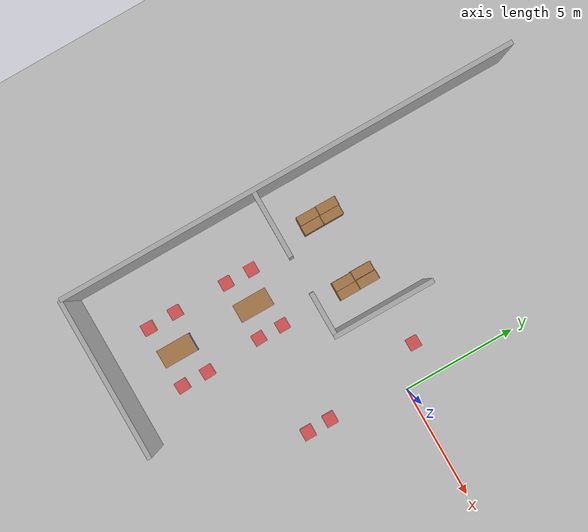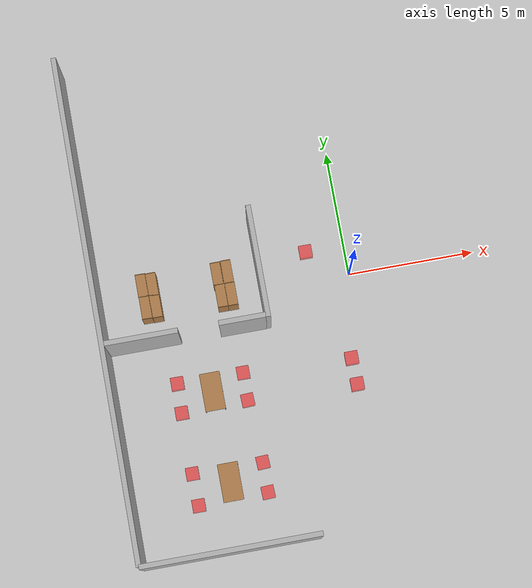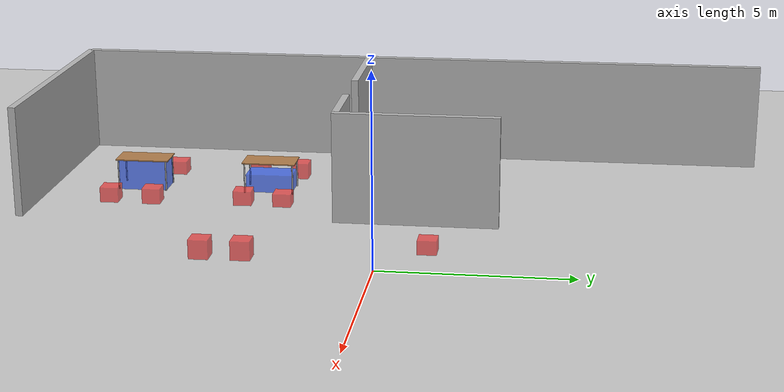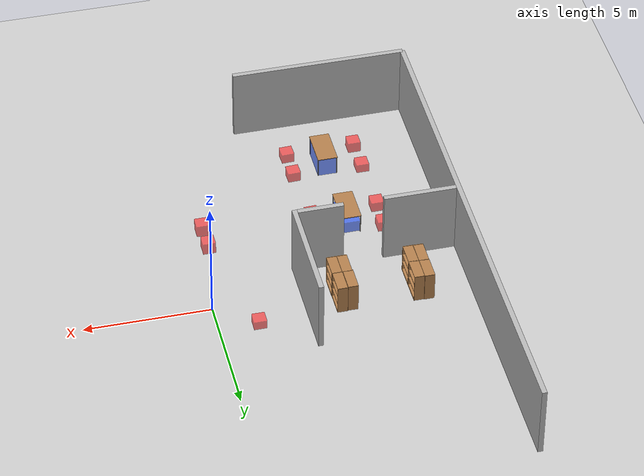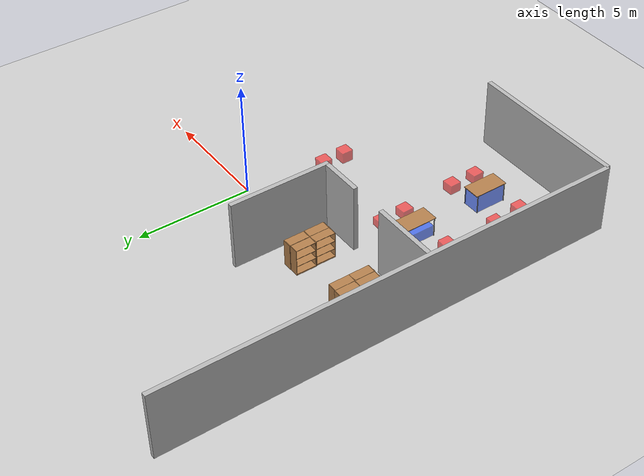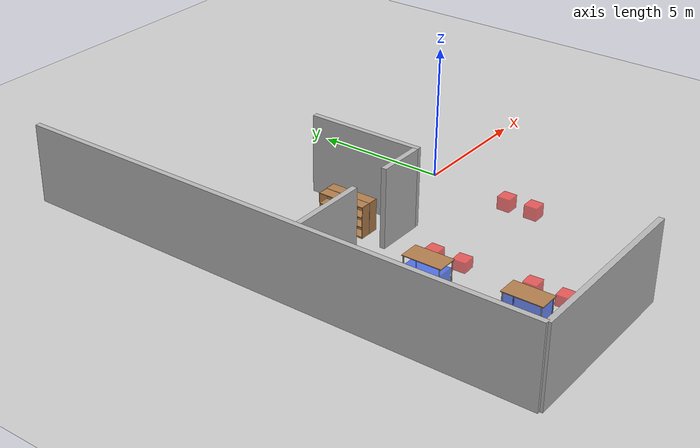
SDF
<sdf version="1.7">
 <world name="library_world">
  <model name="ground_plane">
   <static>1</static>
   <link name="link">
    <collision name="collision">
     <geometry><plane><normal>0 0 1</normal><size>100 100</size></plane></geometry>
     <surface>
      <contact><collide_bitmask>65535</collide_bitmask></contact>
      <friction><ode><mu>100</mu><mu2>50</mu2></ode></friction>
     </surface>
    </collision>
    <visual name="visual">
     <cast_shadows>0</cast_shadows>
     <geometry><plane><normal>0 0 1</normal><size>100 100</size></plane></geometry>
     <material>
      <script><uri>file://media/materials/scripts/gazebo.material</uri><name>Gazebo/Grey</name></script>
     </material>
    </visual>
   </link>
  </model>
  <model name="wall_left">
   <static>1</static>
   <link name="link"><visual name="visual"><geometry><box><size>0.2 20 3</size></box></geometry></visual></link>
   <pose>-10 0 1.5 0 -0 0</pose>
  </model>
  <model name="wall_front_left">
   <static>1</static>
   <link name="link"><visual name="visual"><geometry><box><size>7 0.2 3</size></box></geometry></visual></link>
   <pose>-6.5 -10 1.5 0 -0 0</pose>
  </model>
  <model name="bookshelf_0_clone_2_clone_21">
   <static>1</static>
   <link name="link">
    <inertial><mass>1</mass></inertial>
    <collision name="back">
     <pose>0 0.005 0.6 0 -0 0</pose>
     <geometry><box><size>0.9 0.01 1.2</size></box></geometry>
    </collision>
    <visual name="visual1">
     <pose>0 0.005 0.6 0 -0 0</pose>
     <geometry><box><size>0.9 0.01 1.2</size></box></geometry>
     <material>
      <script><uri>file://media/materials/scripts/gazebo.material</uri><name>Gazebo/Wood</name></script>
     </material>
    </visual>
    <collision name="left_side">
     <pose>0.45 -0.195 0.6 0 -0 0</pose>
     <geometry><box><size>0.02 0.4 1.2</size></box></geometry>
    </collision>
    <visual name="visual2">
     <pose>0.45 -0.195 0.6 0 -0 0</pose>
     <geometry><box><size>0.02 0.4 1.2</size></box></geometry>
     <material>
      <script><uri>file://media/materials/scripts/gazebo.material</uri><name>Gazebo/Wood</name></script>
     </material>
    </visual>
    <collision name="right_side">
     <pose>-0.45 -0.195 0.6 0 -0 0</pose>
     <geometry><box><size>0.02 0.4 1.2</size></box></geometry>
    </collision>
    <visual name="visual3">
     <pose>-0.45 -0.195 0.6 0 -0 0</pose>
     <geometry><box><size>0.02 0.4 1.2</size></box></geometry>
     <material>
      <script><uri>file://media/materials/scripts/gazebo.material</uri><name>Gazebo/Wood</name></script>
     </material>
    </visual>
    <collision name="bottom">
     <pose>0 -0.195 0.03 0 -0 0</pose>
     <geometry><box><size>0.88 0.4 0.06</size></box></geometry>
    </collision>
    <visual name="visual4">
     <pose>0 -0.195 0.03 0 -0 0</pose>
     <geometry><box><size>0.88 0.4 0.06</size></box></geometry>
     <material>
      <script><uri>file://media/materials/scripts/gazebo.material</uri><name>Gazebo/Wood</name></script>
     </material>
    </visual>
    <collision name="top">
     <pose>0 -0.195 1.19 0 -0 0</pose>
     <geometry><box><size>0.88 0.4 0.02</size></box></geometry>
    </collision>
    <visual name="visual5">
     <pose>0 -0.195 1.19 0 -0 0</pose>
     <geometry><box><size>0.88 0.4 0.02</size></box></geometry>
     <material>
      <script><uri>file://media/materials/scripts/gazebo.material</uri><name>Gazebo/Wood</name></script>
     </material>
    </visual>
    <collision name="low_shelf">
     <pose>0 -0.195 0.43 0 -0 0</pose>
     <geometry><box><size>0.88 0.4 0.02</size></box></geometry>
    </collision>
    <visual name="visual6">
     <pose>0 -0.195 0.43 0 -0 0</pose>
     <geometry><box><size>0.88 0.4 0.02</size></box></geometry>
     <material>
      <script><uri>file://media/materials/scripts/gazebo.material</uri><name>Gazebo/Wood</name></script>
     </material>
    </visual>
    <collision name="high_shelf">
     <pose>0 -0.195 0.8 0 -0 0</pose>
     <geometry><box><size>0.88 0.4 0.02</size></box></geometry>
    </collision>
    <visual name="visual7">
     <pose>0 -0.195 0.8 0 -0 0</pose>
     <geometry><box><size>0.88 0.4 0.02</size></box></geometry>
     <material>
      <script><uri>file://media/materials/scripts/gazebo.material</uri><name>Gazebo/Wood</name></script>
     </material>
    </visual>
   </link>
   <pose>-7.97891 0.803139 0 0 -0 1.57381</pose>
  </model>
  <model name="bookshelf_0_clone_2_clone_22">
   <static>1</static>
   <link name="link">
    <inertial><mass>1</mass></inertial>
    <collision name="back">
     <pose>0 0.005 0.6 0 -0 0</pose>
     <geometry><box><size>0.9 0.01 1.2</size></box></geometry>
    </collision>
    <visual name="visual1">
     <pose>0 0.005 0.6 0 -0 0</pose>
     <geometry><box><size>0.9 0.01 1.2</size></box></geometry>
     <material>
      <script><uri>file://media/materials/scripts/gazebo.material</uri><name>Gazebo/Wood</name></script>
     </material>
    </visual>
    <collision name="left_side">
     <pose>0.45 -0.195 0.6 0 -0 0</pose>
     <geometry><box><size>0.02 0.4 1.2</size></box></geometry>
    </collision>
    <visual name="visual2">
     <pose>0.45 -0.195 0.6 0 -0 0</pose>
     <geometry><box><size>0.02 0.4 1.2</size></box></geometry>
     <material>
      <script><uri>file://media/materials/scripts/gazebo.material</uri><name>Gazebo/Wood</name></script>
     </material>
    </visual>
    <collision name="right_side">
     <pose>-0.45 -0.195 0.6 0 -0 0</pose>
     <geometry><box><size>0.02 0.4 1.2</size></box></geometry>
    </collision>
    <visual name="visual3">
     <pose>-0.45 -0.195 0.6 0 -0 0</pose>
     <geometry><box><size>0.02 0.4 1.2</size></box></geometry>
     <material>
      <script><uri>file://media/materials/scripts/gazebo.material</uri><name>Gazebo/Wood</name></script>
     </material>
    </visual>
    <collision name="bottom">
     <pose>0 -0.195 0.03 0 -0 0</pose>
     <geometry><box><size>0.88 0.4 0.06</size></box></geometry>
    </collision>
    <visual name="visual4">
     <pose>0 -0.195 0.03 0 -0 0</pose>
     <geometry><box><size>0.88 0.4 0.06</size></box></geometry>
     <material>
      <script><uri>file://media/materials/scripts/gazebo.material</uri><name>Gazebo/Wood</name></script>
     </material>
    </visual>
    <collision name="top">
     <pose>0 -0.195 1.19 0 -0 0</pose>
     <geometry><box><size>0.88 0.4 0.02</size></box></geometry>
    </collision>
    <visual name="visual5">
     <pose>0 -0.195 1.19 0 -0 0</pose>
     <geometry><box><size>0.88 0.4 0.02</size></box></geometry>
     <material>
      <script><uri>file://media/materials/scripts/gazebo.material</uri><name>Gazebo/Wood</name></script>
     </material>
    </visual>
    <collision name="low_shelf">
     <pose>0 -0.195 0.43 0 -0 0</pose>
     <geometry><box><size>0.88 0.4 0.02</size></box></geometry>
    </collision>
    <visual name="visual6">
     <pose>0 -0.195 0.43 0 -0 0</pose>
     <geometry><box><size>0.88 0.4 0.02</size></box></geometry>
     <material>
      <script><uri>file://media/materials/scripts/gazebo.material</uri><name>Gazebo/Wood</name></script>
     </material>
    </visual>
    <collision name="high_shelf">
     <pose>0 -0.195 0.8 0 -0 0</pose>
     <geometry><box><size>0.88 0.4 0.02</size></box></geometry>
    </collision>
    <visual name="visual7">
     <pose>0 -0.195 0.8 0 -0 0</pose>
     <geometry><box><size>0.88 0.4 0.02</size></box></geometry>
     <material>
      <script><uri>file://media/materials/scripts/gazebo.material</uri><name>Gazebo/Wood</name></script>
     </material>
    </visual>
   </link>
   <pose>-7.97514 -0.07728 0 0 -0 1.57381</pose>
  </model>
  <model name="bookshelf_0_clone_2_clone_26">
   <static>1</static>
   <link name="link">
    <inertial><mass>1</mass></inertial>
    <collision name="back">
     <pose>0 0.005 0.6 0 -0 0</pose>
     <geometry><box><size>0.9 0.01 1.2</size></box></geometry>
    </collision>
    <visual name="visual1">
     <pose>0 0.005 0.6 0 -0 0</pose>
     <geometry><box><size>0.9 0.01 1.2</size></box></geometry>
     <material>
      <script><uri>file://media/materials/scripts/gazebo.material</uri><name>Gazebo/Wood</name></script>
     </material>
    </visual>
    <collision name="left_side">
     <pose>0.45 -0.195 0.6 0 -0 0</pose>
     <geometry><box><size>0.02 0.4 1.2</size></box></geometry>
    </collision>
    <visual name="visual2">
     <pose>0.45 -0.195 0.6 0 -0 0</pose>
     <geometry><box><size>0.02 0.4 1.2</size></box></geometry>
     <material>
      <script><uri>file://media/materials/scripts/gazebo.material</uri><name>Gazebo/Wood</name></script>
     </material>
    </visual>
    <collision name="right_side">
     <pose>-0.45 -0.195 0.6 0 -0 0</pose>
     <geometry><box><size>0.02 0.4 1.2</size></box></geometry>
    </collision>
    <visual name="visual3">
     <pose>-0.45 -0.195 0.6 0 -0 0</pose>
     <geometry><box><size>0.02 0.4 1.2</size></box></geometry>
     <material>
      <script><uri>file://media/materials/scripts/gazebo.material</uri><name>Gazebo/Wood</name></script>
     </material>
    </visual>
    <collision name="bottom">
     <pose>0 -0.195 0.03 0 -0 0</pose>
     <geometry><box><size>0.88 0.4 0.06</size></box></geometry>
    </collision>
    <visual name="visual4">
     <pose>0 -0.195 0.03 0 -0 0</pose>
     <geometry><box><size>0.88 0.4 0.06</size></box></geometry>
     <material>
      <script><uri>file://media/materials/scripts/gazebo.material</uri><name>Gazebo/Wood</name></script>
     </material>
    </visual>
    <collision name="top">
     <pose>0 -0.195 1.19 0 -0 0</pose>
     <geometry><box><size>0.88 0.4 0.02</size></box></geometry>
    </collision>
    <visual name="visual5">
     <pose>0 -0.195 1.19 0 -0 0</pose>
     <geometry><box><size>0.88 0.4 0.02</size></box></geometry>
     <material>
      <script><uri>file://media/materials/scripts/gazebo.material</uri><name>Gazebo/Wood</name></script>
     </material>
    </visual>
    <collision name="low_shelf">
     <pose>0 -0.195 0.43 0 -0 0</pose>
     <geometry><box><size>0.88 0.4 0.02</size></box></geometry>
    </collision>
    <visual name="visual6">
     <pose>0 -0.195 0.43 0 -0 0</pose>
     <geometry><box><size>0.88 0.4 0.02</size></box></geometry>
     <material>
      <script><uri>file://media/materials/scripts/gazebo.material</uri><name>Gazebo/Wood</name></script>
     </material>
    </visual>
    <collision name="high_shelf">
     <pose>0 -0.195 0.8 0 -0 0</pose>
     <geometry><box><size>0.88 0.4 0.02</size></box></geometry>
    </collision>
    <visual name="visual7">
     <pose>0 -0.195 0.8 0 -0 0</pose>
     <geometry><box><size>0.88 0.4 0.02</size></box></geometry>
     <material>
      <script><uri>file://media/materials/scripts/gazebo.material</uri><name>Gazebo/Wood</name></script>
     </material>
    </visual>
   </link>
   <pose>-4.98785 0.777625 0 0 -0 1.57381</pose>
  </model>
  <model name="bookshelf_0_clone_2_clone_27">
   <static>1</static>
   <link name="link">
    <inertial><mass>1</mass></inertial>
    <collision name="back">
     <pose>0 0.005 0.6 0 -0 0</pose>
     <geometry><box><size>0.9 0.01 1.2</size></box></geometry>
    </collision>
    <visual name="visual1">
     <pose>0 0.005 0.6 0 -0 0</pose>
     <geometry><box><size>0.9 0.01 1.2</size></box></geometry>
     <material>
      <script><uri>file://media/materials/scripts/gazebo.material</uri><name>Gazebo/Wood</name></script>
     </material>
    </visual>
    <collision name="left_side">
     <pose>0.45 -0.195 0.6 0 -0 0</pose>
     <geometry><box><size>0.02 0.4 1.2</size></box></geometry>
    </collision>
    <visual name="visual2">
     <pose>0.45 -0.195 0.6 0 -0 0</pose>
     <geometry><box><size>0.02 0.4 1.2</size></box></geometry>
     <material>
      <script><uri>file://media/materials/scripts/gazebo.material</uri><name>Gazebo/Wood</name></script>
     </material>
    </visual>
    <collision name="right_side">
     <pose>-0.45 -0.195 0.6 0 -0 0</pose>
     <geometry><box><size>0.02 0.4 1.2</size></box></geometry>
    </collision>
    <visual name="visual3">
     <pose>-0.45 -0.195 0.6 0 -0 0</pose>
     <geometry><box><size>0.02 0.4 1.2</size></box></geometry>
     <material>
      <script><uri>file://media/materials/scripts/gazebo.material</uri><name>Gazebo/Wood</name></script>
     </material>
    </visual>
    <collision name="bottom">
     <pose>0 -0.195 0.03 0 -0 0</pose>
     <geometry><box><size>0.88 0.4 0.06</size></box></geometry>
    </collision>
    <visual name="visual4">
     <pose>0 -0.195 0.03 0 -0 0</pose>
     <geometry><box><size>0.88 0.4 0.06</size></box></geometry>
     <material>
      <script><uri>file://media/materials/scripts/gazebo.material</uri><name>Gazebo/Wood</name></script>
     </material>
    </visual>
    <collision name="top">
     <pose>0 -0.195 1.19 0 -0 0</pose>
     <geometry><box><size>0.88 0.4 0.02</size></box></geometry>
    </collision>
    <visual name="visual5">
     <pose>0 -0.195 1.19 0 -0 0</pose>
     <geometry><box><size>0.88 0.4 0.02</size></box></geometry>
     <material>
      <script><uri>file://media/materials/scripts/gazebo.material</uri><name>Gazebo/Wood</name></script>
     </material>
    </visual>
    <collision name="low_shelf">
     <pose>0 -0.195 0.43 0 -0 0</pose>
     <geometry><box><size>0.88 0.4 0.02</size></box></geometry>
    </collision>
    <visual name="visual6">
     <pose>0 -0.195 0.43 0 -0 0</pose>
     <geometry><box><size>0.88 0.4 0.02</size></box></geometry>
     <material>
      <script><uri>file://media/materials/scripts/gazebo.material</uri><name>Gazebo/Wood</name></script>
     </material>
    </visual>
    <collision name="high_shelf">
     <pose>0 -0.195 0.8 0 -0 0</pose>
     <geometry><box><size>0.88 0.4 0.02</size></box></geometry>
    </collision>
    <visual name="visual7">
     <pose>0 -0.195 0.8 0 -0 0</pose>
     <geometry><box><size>0.88 0.4 0.02</size></box></geometry>
     <material>
      <script><uri>file://media/materials/scripts/gazebo.material</uri><name>Gazebo/Wood</name></script>
     </material>
    </visual>
   </link>
   <pose>-4.97715 -0.128722 0 0 -0 1.57381</pose>
  </model>
  <model name="bookshelf_0_clone_8_clone_17_clone_12">
   <static>1</static>
   <link name="link">
    <inertial><mass>1</mass></inertial>
    <collision name="back">
     <pose>0 0.005 0.6 0 -0 0</pose>
     <geometry><box><size>0.9 0.01 1.2</size></box></geometry>
    </collision>
    <visual name="visual1">
     <pose>0 0.005 0.6 0 -0 0</pose>
     <geometry><box><size>0.9 0.01 1.2</size></box></geometry>
     <material>
      <script><uri>file://media/materials/scripts/gazebo.material</uri><name>Gazebo/Wood</name></script>
     </material>
    </visual>
    <collision name="left_side">
     <pose>0.45 -0.195 0.6 0 -0 0</pose>
     <geometry><box><size>0.02 0.4 1.2</size></box></geometry>
    </collision>
    <visual name="visual2">
     <pose>0.45 -0.195 0.6 0 -0 0</pose>
     <geometry><box><size>0.02 0.4 1.2</size></box></geometry>
     <material>
      <script><uri>file://media/materials/scripts/gazebo.material</uri><name>Gazebo/Wood</name></script>
     </material>
    </visual>
    <collision name="right_side">
     <pose>-0.45 -0.195 0.6 0 -0 0</pose>
     <geometry><box><size>0.02 0.4 1.2</size></box></geometry>
    </collision>
    <visual name="visual3">
     <pose>-0.45 -0.195 0.6 0 -0 0</pose>
     <geometry><box><size>0.02 0.4 1.2</size></box></geometry>
     <material>
      <script><uri>file://media/materials/scripts/gazebo.material</uri><name>Gazebo/Wood</name></script>
     </material>
    </visual>
    <collision name="bottom">
     <pose>0 -0.195 0.03 0 -0 0</pose>
     <geometry><box><size>0.88 0.4 0.06</size></box></geometry>
    </collision>
    <visual name="visual4">
     <pose>0 -0.195 0.03 0 -0 0</pose>
     <geometry><box><size>0.88 0.4 0.06</size></box></geometry>
     <material>
      <script><uri>file://media/materials/scripts/gazebo.material</uri><name>Gazebo/Wood</name></script>
     </material>
    </visual>
    <collision name="top">
     <pose>0 -0.195 1.19 0 -0 0</pose>
     <geometry><box><size>0.88 0.4 0.02</size></box></geometry>
    </collision>
    <visual name="visual5">
     <pose>0 -0.195 1.19 0 -0 0</pose>
     <geometry><box><size>0.88 0.4 0.02</size></box></geometry>
     <material>
      <script><uri>file://media/materials/scripts/gazebo.material</uri><name>Gazebo/Wood</name></script>
     </material>
    </visual>
    <collision name="low_shelf">
     <pose>0 -0.195 0.43 0 -0 0</pose>
     <geometry><box><size>0.88 0.4 0.02</size></box></geometry>
    </collision>
    <visual name="visual6">
     <pose>0 -0.195 0.43 0 -0 0</pose>
     <geometry><box><size>0.88 0.4 0.02</size></box></geometry>
     <material>
      <script><uri>file://media/materials/scripts/gazebo.material</uri><name>Gazebo/Wood</name></script>
     </material>
    </visual>
    <collision name="high_shelf">
     <pose>0 -0.195 0.8 0 -0 0</pose>
     <geometry><box><size>0.88 0.4 0.02</size></box></geometry>
    </collision>
    <visual name="visual7">
     <pose>0 -0.195 0.8 0 -0 0</pose>
     <geometry><box><size>0.88 0.4 0.02</size></box></geometry>
     <material>
      <script><uri>file://media/materials/scripts/gazebo.material</uri><name>Gazebo/Wood</name></script>
     </material>
    </visual>
   </link>
   <pose>-5.01471 0.760959 0 0 0 -1.57537</pose>
  </model>
  <model name="bookshelf_0_clone_8_clone_17_clone_13">
   <static>1</static>
   <link name="link">
    <inertial><mass>1</mass></inertial>
    <collision name="back">
     <pose>0 0.005 0.6 0 -0 0</pose>
     <geometry><box><size>0.9 0.01 1.2</size></box></geometry>
    </collision>
    <visual name="visual1">
     <pose>0 0.005 0.6 0 -0 0</pose>
     <geometry><box><size>0.9 0.01 1.2</size></box></geometry>
     <material>
      <script><uri>file://media/materials/scripts/gazebo.material</uri><name>Gazebo/Wood</name></script>
     </material>
    </visual>
    <collision name="left_side">
     <pose>0.45 -0.195 0.6 0 -0 0</pose>
     <geometry><box><size>0.02 0.4 1.2</size></box></geometry>
    </collision>
    <visual name="visual2">
     <pose>0.45 -0.195 0.6 0 -0 0</pose>
     <geometry><box><size>0.02 0.4 1.2</size></box></geometry>
     <material>
      <script><uri>file://media/materials/scripts/gazebo.material</uri><name>Gazebo/Wood</name></script>
     </material>
    </visual>
    <collision name="right_side">
     <pose>-0.45 -0.195 0.6 0 -0 0</pose>
     <geometry><box><size>0.02 0.4 1.2</size></box></geometry>
    </collision>
    <visual name="visual3">
     <pose>-0.45 -0.195 0.6 0 -0 0</pose>
     <geometry><box><size>0.02 0.4 1.2</size></box></geometry>
     <material>
      <script><uri>file://media/materials/scripts/gazebo.material</uri><name>Gazebo/Wood</name></script>
     </material>
    </visual>
    <collision name="bottom">
     <pose>0 -0.195 0.03 0 -0 0</pose>
     <geometry><box><size>0.88 0.4 0.06</size></box></geometry>
    </collision>
    <visual name="visual4">
     <pose>0 -0.195 0.03 0 -0 0</pose>
     <geometry><box><size>0.88 0.4 0.06</size></box></geometry>
     <material>
      <script><uri>file://media/materials/scripts/gazebo.material</uri><name>Gazebo/Wood</name></script>
     </material>
    </visual>
    <collision name="top">
     <pose>0 -0.195 1.19 0 -0 0</pose>
     <geometry><box><size>0.88 0.4 0.02</size></box></geometry>
    </collision>
    <visual name="visual5">
     <pose>0 -0.195 1.19 0 -0 0</pose>
     <geometry><box><size>0.88 0.4 0.02</size></box></geometry>
     <material>
      <script><uri>file://media/materials/scripts/gazebo.material</uri><name>Gazebo/Wood</name></script>
     </material>
    </visual>
    <collision name="low_shelf">
     <pose>0 -0.195 0.43 0 -0 0</pose>
     <geometry><box><size>0.88 0.4 0.02</size></box></geometry>
    </collision>
    <visual name="visual6">
     <pose>0 -0.195 0.43 0 -0 0</pose>
     <geometry><box><size>0.88 0.4 0.02</size></box></geometry>
     <material>
      <script><uri>file://media/materials/scripts/gazebo.material</uri><name>Gazebo/Wood</name></script>
     </material>
    </visual>
    <collision name="high_shelf">
     <pose>0 -0.195 0.8 0 -0 0</pose>
     <geometry><box><size>0.88 0.4 0.02</size></box></geometry>
    </collision>
    <visual name="visual7">
     <pose>0 -0.195 0.8 0 -0 0</pose>
     <geometry><box><size>0.88 0.4 0.02</size></box></geometry>
     <material>
      <script><uri>file://media/materials/scripts/gazebo.material</uri><name>Gazebo/Wood</name></script>
     </material>
    </visual>
   </link>
   <pose>-4.98731 -0.125446 0 0 0 -1.57537</pose>
  </model>
  <model name="bookshelf_0_clone_8_clone_17_clone_17">
   <static>1</static>
   <link name="link">
    <inertial><mass>1</mass></inertial>
    <collision name="back">
     <pose>0 0.005 0.6 0 -0 0</pose>
     <geometry><box><size>0.9 0.01 1.2</size></box></geometry>
    </collision>
    <visual name="visual1">
     <pose>0 0.005 0.6 0 -0 0</pose>
     <geometry><box><size>0.9 0.01 1.2</size></box></geometry>
     <material>
      <script><uri>file://media/materials/scripts/gazebo.material</uri><name>Gazebo/Wood</name></script>
     </material>
    </visual>
    <collision name="left_side">
     <pose>0.45 -0.195 0.6 0 -0 0</pose>
     <geometry><box><size>0.02 0.4 1.2</size></box></geometry>
    </collision>
    <visual name="visual2">
     <pose>0.45 -0.195 0.6 0 -0 0</pose>
     <geometry><box><size>0.02 0.4 1.2</size></box></geometry>
     <material>
      <script><uri>file://media/materials/scripts/gazebo.material</uri><name>Gazebo/Wood</name></script>
     </material>
    </visual>
    <collision name="right_side">
     <pose>-0.45 -0.195 0.6 0 -0 0</pose>
     <geometry><box><size>0.02 0.4 1.2</size></box></geometry>
    </collision>
    <visual name="visual3">
     <pose>-0.45 -0.195 0.6 0 -0 0</pose>
     <geometry><box><size>0.02 0.4 1.2</size></box></geometry>
     <material>
      <script><uri>file://media/materials/scripts/gazebo.material</uri><name>Gazebo/Wood</name></script>
     </material>
    </visual>
    <collision name="bottom">
     <pose>0 -0.195 0.03 0 -0 0</pose>
     <geometry><box><size>0.88 0.4 0.06</size></box></geometry>
    </collision>
    <visual name="visual4">
     <pose>0 -0.195 0.03 0 -0 0</pose>
     <geometry><box><size>0.88 0.4 0.06</size></box></geometry>
     <material>
      <script><uri>file://media/materials/scripts/gazebo.material</uri><name>Gazebo/Wood</name></script>
     </material>
    </visual>
    <collision name="top">
     <pose>0 -0.195 1.19 0 -0 0</pose>
     <geometry><box><size>0.88 0.4 0.02</size></box></geometry>
    </collision>
    <visual name="visual5">
     <pose>0 -0.195 1.19 0 -0 0</pose>
     <geometry><box><size>0.88 0.4 0.02</size></box></geometry>
     <material>
      <script><uri>file://media/materials/scripts/gazebo.material</uri><name>Gazebo/Wood</name></script>
     </material>
    </visual>
    <collision name="low_shelf">
     <pose>0 -0.195 0.43 0 -0 0</pose>
     <geometry><box><size>0.88 0.4 0.02</size></box></geometry>
    </collision>
    <visual name="visual6">
     <pose>0 -0.195 0.43 0 -0 0</pose>
     <geometry><box><size>0.88 0.4 0.02</size></box></geometry>
     <material>
      <script><uri>file://media/materials/scripts/gazebo.material</uri><name>Gazebo/Wood</name></script>
     </material>
    </visual>
    <collision name="high_shelf">
     <pose>0 -0.195 0.8 0 -0 0</pose>
     <geometry><box><size>0.88 0.4 0.02</size></box></geometry>
    </collision>
    <visual name="visual7">
     <pose>0 -0.195 0.8 0 -0 0</pose>
     <geometry><box><size>0.88 0.4 0.02</size></box></geometry>
     <material>
      <script><uri>file://media/materials/scripts/gazebo.material</uri><name>Gazebo/Wood</name></script>
     </material>
    </visual>
   </link>
   <pose>-7.99317 0.825013 0 0 0 -1.57537</pose>
  </model>
  <model name="bookshelf_0_clone_8_clone_17_clone_18">
   <static>1</static>
   <link name="link">
    <inertial><mass>1</mass></inertial>
    <collision name="back">
     <pose>0 0.005 0.6 0 -0 0</pose>
     <geometry><box><size>0.9 0.01 1.2</size></box></geometry>
    </collision>
    <visual name="visual1">
     <pose>0 0.005 0.6 0 -0 0</pose>
     <geometry><box><size>0.9 0.01 1.2</size></box></geometry>
     <material>
      <script><uri>file://media/materials/scripts/gazebo.material</uri><name>Gazebo/Wood</name></script>
     </material>
    </visual>
    <collision name="left_side">
     <pose>0.45 -0.195 0.6 0 -0 0</pose>
     <geometry><box><size>0.02 0.4 1.2</size></box></geometry>
    </collision>
    <visual name="visual2">
     <pose>0.45 -0.195 0.6 0 -0 0</pose>
     <geometry><box><size>0.02 0.4 1.2</size></box></geometry>
     <material>
      <script><uri>file://media/materials/scripts/gazebo.material</uri><name>Gazebo/Wood</name></script>
     </material>
    </visual>
    <collision name="right_side">
     <pose>-0.45 -0.195 0.6 0 -0 0</pose>
     <geometry><box><size>0.02 0.4 1.2</size></box></geometry>
    </collision>
    <visual name="visual3">
     <pose>-0.45 -0.195 0.6 0 -0 0</pose>
     <geometry><box><size>0.02 0.4 1.2</size></box></geometry>
     <material>
      <script><uri>file://media/materials/scripts/gazebo.material</uri><name>Gazebo/Wood</name></script>
     </material>
    </visual>
    <collision name="bottom">
     <pose>0 -0.195 0.03 0 -0 0</pose>
     <geometry><box><size>0.88 0.4 0.06</size></box></geometry>
    </collision>
    <visual name="visual4">
     <pose>0 -0.195 0.03 0 -0 0</pose>
     <geometry><box><size>0.88 0.4 0.06</size></box></geometry>
     <material>
      <script><uri>file://media/materials/scripts/gazebo.material</uri><name>Gazebo/Wood</name></script>
     </material>
    </visual>
    <collision name="top">
     <pose>0 -0.195 1.19 0 -0 0</pose>
     <geometry><box><size>0.88 0.4 0.02</size></box></geometry>
    </collision>
    <visual name="visual5">
     <pose>0 -0.195 1.19 0 -0 0</pose>
     <geometry><box><size>0.88 0.4 0.02</size></box></geometry>
     <material>
      <script><uri>file://media/materials/scripts/gazebo.material</uri><name>Gazebo/Wood</name></script>
     </material>
    </visual>
    <collision name="low_shelf">
     <pose>0 -0.195 0.43 0 -0 0</pose>
     <geometry><box><size>0.88 0.4 0.02</size></box></geometry>
    </collision>
    <visual name="visual6">
     <pose>0 -0.195 0.43 0 -0 0</pose>
     <geometry><box><size>0.88 0.4 0.02</size></box></geometry>
     <material>
      <script><uri>file://media/materials/scripts/gazebo.material</uri><name>Gazebo/Wood</name></script>
     </material>
    </visual>
    <collision name="high_shelf">
     <pose>0 -0.195 0.8 0 -0 0</pose>
     <geometry><box><size>0.88 0.4 0.02</size></box></geometry>
    </collision>
    <visual name="visual7">
     <pose>0 -0.195 0.8 0 -0 0</pose>
     <geometry><box><size>0.88 0.4 0.02</size></box></geometry>
     <material>
      <script><uri>file://media/materials/scripts/gazebo.material</uri><name>Gazebo/Wood</name></script>
     </material>
    </visual>
   </link>
   <pose>-7.99041 -0.064216 0 0 0 -1.57537</pose>
  </model>
  <model name="table_clone_3">
   <static>1</static>
   <link name="link">
    <collision name="surface">
     <pose>0 0 1 0 -0 0</pose>
     <geometry><box><size>1.5 0.8 0.03</size></box></geometry>
     <surface><friction><ode><mu>0.6</mu><mu2>0.6</mu2></ode></friction></surface>
    </collision>
    <visual name="visual1">
     <pose>0 0 1 0 -0 0</pose>
     <geometry><box><size>1.5 0.8 0.03</size></box></geometry>
     <material>
      <script><uri>file://media/materials/scripts/gazebo.material</uri><name>Gazebo/Wood</name></script>
     </material>
    </visual>
    <collision name="front_left_leg">
     <pose>0.68 0.38 0.5 0 -0 0</pose>
     <geometry><cylinder><radius>0.02</radius><length>1</length></cylinder></geometry>
    </collision>
    <visual name="front_left_leg">
     <pose>0.68 0.38 0.5 0 -0 0</pose>
     <geometry><cylinder><radius>0.02</radius><length>1</length></cylinder></geometry>
     <material>
      <script><uri>file://media/materials/scripts/gazebo.material</uri><name>Gazebo/Grey</name></script>
     </material>
    </visual>
    <collision name="front_right_leg">
     <pose>0.68 -0.38 0.5 0 -0 0</pose>
     <geometry><cylinder><radius>0.02</radius><length>1</length></cylinder></geometry>
    </collision>
    <visual name="front_right_leg">
     <pose>0.68 -0.38 0.5 0 -0 0</pose>
     <geometry><cylinder><radius>0.02</radius><length>1</length></cylinder></geometry>
     <material>
      <script><uri>file://media/materials/scripts/gazebo.material</uri><name>Gazebo/Grey</name></script>
     </material>
    </visual>
    <collision name="back_right_leg">
     <pose>-0.68 -0.38 0.5 0 -0 0</pose>
     <geometry><cylinder><radius>0.02</radius><length>1</length></cylinder></geometry>
    </collision>
    <visual name="back_right_leg">
     <pose>-0.68 -0.38 0.5 0 -0 0</pose>
     <geometry><cylinder><radius>0.02</radius><length>1</length></cylinder></geometry>
     <material>
      <script><uri>file://media/materials/scripts/gazebo.material</uri><name>Gazebo/Grey</name></script>
     </material>
    </visual>
    <collision name="back_left_leg">
     <pose>-0.68 0.38 0.5 0 -0 0</pose>
     <geometry><cylinder><radius>0.02</radius><length>1</length></cylinder></geometry>
    </collision>
    <visual name="back_left_leg">
     <pose>-0.68 0.38 0.5 0 -0 0</pose>
     <geometry><cylinder><radius>0.02</radius><length>1</length></cylinder></geometry>
     <material>
      <script><uri>file://media/materials/scripts/gazebo.material</uri><name>Gazebo/Grey</name></script>
     </material>
    </visual>
   </link>
   <pose>-6.18301 -3.75007 -0.174155 -0.000869 2e-06 -1.56857</pose>
  </model>
  <model name="table_clone_5">
   <static>1</static>
   <link name="link">
    <collision name="surface">
     <pose>0 0 1 0 -0 0</pose>
     <geometry><box><size>1.5 0.8 0.03</size></box></geometry>
     <surface><friction><ode><mu>0.6</mu><mu2>0.6</mu2></ode></friction></surface>
    </collision>
    <visual name="visual1">
     <pose>0 0 1 0 -0 0</pose>
     <geometry><box><size>1.5 0.8 0.03</size></box></geometry>
     <material>
      <script><uri>file://media/materials/scripts/gazebo.material</uri><name>Gazebo/Wood</name></script>
     </material>
    </visual>
    <collision name="front_left_leg">
     <pose>0.68 0.38 0.5 0 -0 0</pose>
     <geometry><cylinder><radius>0.02</radius><length>1</length></cylinder></geometry>
    </collision>
    <visual name="front_left_leg">
     <pose>0.68 0.38 0.5 0 -0 0</pose>
     <geometry><cylinder><radius>0.02</radius><length>1</length></cylinder></geometry>
     <material>
      <script><uri>file://media/materials/scripts/gazebo.material</uri><name>Gazebo/Grey</name></script>
     </material>
    </visual>
    <collision name="front_right_leg">
     <pose>0.68 -0.38 0.5 0 -0 0</pose>
     <geometry><cylinder><radius>0.02</radius><length>1</length></cylinder></geometry>
    </collision>
    <visual name="front_right_leg">
     <pose>0.68 -0.38 0.5 0 -0 0</pose>
     <geometry><cylinder><radius>0.02</radius><length>1</length></cylinder></geometry>
     <material>
      <script><uri>file://media/materials/scripts/gazebo.material</uri><name>Gazebo/Grey</name></script>
     </material>
    </visual>
    <collision name="back_right_leg">
     <pose>-0.68 -0.38 0.5 0 -0 0</pose>
     <geometry><cylinder><radius>0.02</radius><length>1</length></cylinder></geometry>
    </collision>
    <visual name="back_right_leg">
     <pose>-0.68 -0.38 0.5 0 -0 0</pose>
     <geometry><cylinder><radius>0.02</radius><length>1</length></cylinder></geometry>
     <material>
      <script><uri>file://media/materials/scripts/gazebo.material</uri><name>Gazebo/Grey</name></script>
     </material>
    </visual>
    <collision name="back_left_leg">
     <pose>-0.68 0.38 0.5 0 -0 0</pose>
     <geometry><cylinder><radius>0.02</radius><length>1</length></cylinder></geometry>
    </collision>
    <visual name="back_left_leg">
     <pose>-0.68 0.38 0.5 0 -0 0</pose>
     <geometry><cylinder><radius>0.02</radius><length>1</length></cylinder></geometry>
     <material>
      <script><uri>file://media/materials/scripts/gazebo.material</uri><name>Gazebo/Grey</name></script>
     </material>
    </visual>
   </link>
   <pose>-6.1069 -7.35078 -0.172683 -0.000869 2e-06 -1.56857</pose>
  </model>
  <model name="wall_front_right_clone_clone_0">
   <static>1</static>
   <link name="link">
    <visual name="visual"><geometry><box><size>2.86812 0.2 3</size></box></geometry></visual>
   </link>
   <pose>-8.47874 -1.466 1.5 0 -0 0</pose>
  </model>
  <model name="wall_front_right_clone_clone_clone">
   <static>1</static>
   <link name="link">
    <visual name="visual"><geometry><box><size>1.82991 0.2 3</size></box></geometry></visual>
   </link>
   <pose>-4.55262 -1.46941 1.5 0 -0 0</pose>
  </model>
  <model name="wall_left_clone_clone_clone_0">
   <static>1</static>
   <link name="link">
    <visual name="visual"><geometry><box><size>0.2 4.41332 3</size></box></geometry></visual>
   </link>
   <pose>-3.55657 0.648416 1.5 0 -0 0</pose>
  </model>
  <model name="nav_visible_block_Chair_clone_0">
   <static>1</static>
   <pose>-7.50008 -3.13265 0.172967 0 -0 0</pose>
   <link name="link">
    <collision name="collision">
     <geometry><box><size>0.5 0.5 0.5</size></box></geometry>
     <surface>
      <contact><collide_bitmask>65535</collide_bitmask></contact>
      <friction><ode><mu>1</mu><mu2>1</mu2></ode></friction>
     </surface>
    </collision>
    <visual name="visual">
     <transparency>0.35</transparency>
     <geometry><box><size>0.5 0.5 0.5</size></box></geometry>
     <material><ambient>1 0.15 0.15 1</ambient><diffuse>1 0.15 0.15 1</diffuse></material>
    </visual>
   </link>
  </model>
  <model name="nav_visible_block_Chair_clone_1">
   <static>1</static>
   <pose>-7.52648 -4.30897 0.157654 0 -0 0</pose>
   <link name="link">
    <collision name="collision">
     <geometry><box><size>0.5 0.5 0.5</size></box></geometry>
     <surface>
      <contact><collide_bitmask>65535</collide_bitmask></contact>
      <friction><ode><mu>1</mu><mu2>1</mu2></ode></friction>
     </surface>
    </collision>
    <visual name="visual">
     <transparency>0.35</transparency>
     <geometry><box><size>0.5 0.5 0.5</size></box></geometry>
     <material><ambient>1 0.15 0.15 1</ambient><diffuse>1 0.15 0.15 1</diffuse></material>
    </visual>
   </link>
  </model>
  <model name="nav_visible_block_Chair_clone_2">
   <static>1</static>
   <pose>-7.52899 -6.72794 0.100664 0 -0 0</pose>
   <link name="link">
    <collision name="collision">
     <geometry><box><size>0.500001 0.5 0.5</size></box></geometry>
     <surface>
      <contact><collide_bitmask>65535</collide_bitmask></contact>
      <friction><ode><mu>1</mu><mu2>1</mu2></ode></friction>
     </surface>
    </collision>
    <visual name="visual">
     <transparency>0.35</transparency>
     <geometry><box><size>0.500001 0.5 0.5</size></box></geometry>
     <material><ambient>1 0.15 0.15 1</ambient><diffuse>1 0.15 0.15 1</diffuse></material>
    </visual>
   </link>
  </model>
  <model name="nav_visible_block_Chair_clone_3">
   <static>1</static>
   <pose>-7.49522 -8.00001 0.183857 0 -0 0</pose>
   <link name="link">
    <collision name="collision">
     <geometry><box><size>0.5 0.5 0.5</size></box></geometry>
     <surface>
      <contact><collide_bitmask>65535</collide_bitmask></contact>
      <friction><ode><mu>1</mu><mu2>1</mu2></ode></friction>
     </surface>
    </collision>
    <visual name="visual">
     <transparency>0.35</transparency>
     <geometry><box><size>0.5 0.5 0.5</size></box></geometry>
     <material><ambient>1 0.15 0.15 1</ambient><diffuse>1 0.15 0.15 1</diffuse></material>
    </visual>
   </link>
  </model>
  <model name="nav_visible_block_Chair_clone_14">
   <static>1</static>
   <pose>-4.8744 -3.15565 0.090718 0 -0 0</pose>
   <link name="link">
    <collision name="collision">
     <geometry><box><size>0.5 0.5 0.5</size></box></geometry>
     <surface>
      <contact><collide_bitmask>65535</collide_bitmask></contact>
      <friction><ode><mu>1</mu><mu2>1</mu2></ode></friction>
     </surface>
    </collision>
    <visual name="visual">
     <transparency>0.35</transparency>
     <geometry><box><size>0.5 0.5 0.5</size></box></geometry>
     <material><ambient>1 0.15 0.15 1</ambient><diffuse>1 0.15 0.15 1</diffuse></material>
    </visual>
   </link>
  </model>
  <model name="nav_visible_block_Chair_clone_14_clone">
   <static>1</static>
   <pose>-4.8854 -4.26565 0.123068 0 0 -3.09777</pose>
   <link name="link">
    <collision name="collision">
     <geometry><box><size>0.500001 0.5 0.5</size></box></geometry>
     <surface>
      <contact><collide_bitmask>65535</collide_bitmask></contact>
      <friction><ode><mu>1</mu><mu2>1</mu2></ode></friction>
     </surface>
    </collision>
    <visual name="visual">
     <transparency>0.35</transparency>
     <geometry><box><size>0.500001 0.5 0.5</size></box></geometry>
     <material><ambient>1 0.15 0.15 1</ambient><diffuse>1 0.15 0.15 1</diffuse></material>
    </visual>
   </link>
  </model>
  <model name="nav_visible_block_Chair_clone_14_clone_4">
   <static>1</static>
   <pose>-4.73378 -6.78606 0.149155 0 0 -3.09777</pose>
   <link name="link">
    <collision name="collision">
     <geometry><box><size>0.500001 0.5 0.5</size></box></geometry>
     <surface>
      <contact><collide_bitmask>65535</collide_bitmask></contact>
      <friction><ode><mu>1</mu><mu2>1</mu2></ode></friction>
     </surface>
    </collision>
    <visual name="visual">
     <transparency>0.35</transparency>
     <geometry><box><size>0.500001 0.5 0.5</size></box></geometry>
     <material><ambient>1 0.15 0.15 1</ambient><diffuse>1 0.15 0.15 1</diffuse></material>
    </visual>
   </link>
  </model>
  <model name="nav_visible_block_Chair_clone_14_clone_5">
   <static>1</static>
   <pose>-4.74338 -7.97038 0.141122 0 0 -3.09777</pose>
   <link name="link">
    <collision name="collision">
     <geometry><box><size>0.5 0.5 0.5</size></box></geometry>
     <surface>
      <contact><collide_bitmask>65535</collide_bitmask></contact>
      <friction><ode><mu>1</mu><mu2>1</mu2></ode></friction>
     </surface>
    </collision>
    <visual name="visual">
     <transparency>0.35</transparency>
     <geometry><box><size>0.5 0.5 0.5</size></box></geometry>
     <material><ambient>1 0.15 0.15 1</ambient><diffuse>1 0.15 0.15 1</diffuse></material>
    </visual>
   </link>
  </model>
  <model name="nav_visible_block_Chair_clone_0_clone">
   <static>1</static>
   <pose>-1.5601 1.18331 0.101702 0 -0 0</pose>
   <link name="link">
    <collision name="collision">
     <geometry><box><size>0.5 0.5 0.5</size></box></geometry>
     <surface>
      <contact><collide_bitmask>65535</collide_bitmask></contact>
      <friction><ode><mu>1</mu><mu2>1</mu2></ode></friction>
     </surface>
    </collision>
    <visual name="visual">
     <transparency>0.35</transparency>
     <geometry><box><size>0.5 0.5 0.5</size></box></geometry>
     <material><ambient>1 0.15 0.15 1</ambient><diffuse>1 0.15 0.15 1</diffuse></material>
    </visual>
   </link>
  </model>
  <model name="nav_visible_block_OfficeChairBlue_clone_clone_1">
   <static>1</static>
   <pose>-0.550451 -3.36384 0.25 0 -0 0</pose>
   <link name="link">
    <collision name="collision">
     <geometry><box><size>0.5 0.5 0.5</size></box></geometry>
     <surface>
      <contact><collide_bitmask>65535</collide_bitmask></contact>
      <friction><ode><mu>1</mu><mu2>1</mu2></ode></friction>
     </surface>
    </collision>
    <visual name="visual">
     <transparency>0.35</transparency>
     <geometry><box><size>0.5 0.5 0.5</size></box></geometry>
     <material><ambient>1 0.15 0.15 1</ambient><diffuse>1 0.15 0.15 1</diffuse></material>
    </visual>
   </link>
  </model>
  <model name="nav_visible_block_OfficeChairBlue_clone_clone_2">
   <static>1</static>
   <pose>-0.522515 -4.42 0.25 0 -0 0</pose>
   <link name="link">
    <collision name="collision">
     <geometry><box><size>0.5 0.5 0.5</size></box></geometry>
     <surface>
      <contact><collide_bitmask>65535</collide_bitmask></contact>
      <friction><ode><mu>1</mu><mu2>1</mu2></ode></friction>
     </surface>
    </collision>
    <visual name="visual">
     <transparency>0.35</transparency>
     <geometry><box><size>0.5 0.5 0.5</size></box></geometry>
     <material><ambient>1 0.15 0.15 1</ambient><diffuse>1 0.15 0.15 1</diffuse></material>
    </visual>
   </link>
  </model>
  <model name="nav_visible_block_table_clone_3">
   <static>1</static>
   <pose>-6.18799 -3.74159 0.25 0 0 -1.56857</pose>
   <link name="link">
    <collision name="collision">
     <geometry><box><size>1.30001 0.75 0.499999</size></box></geometry>
     <surface>
      <contact><collide_bitmask>65535</collide_bitmask></contact>
      <friction><ode><mu>1</mu><mu2>1</mu2></ode></friction>
     </surface>
    </collision>
    <visual name="visual">
     <transparency>0.35</transparency>
     <geometry><box><size>1.30001 0.75 0.499999</size></box></geometry>
     <material><ambient>0.1 0.3 1 1</ambient><diffuse>0.1 0.3 1 1</diffuse></material>
    </visual>
   </link>
  </model>
  <model name="nav_visible_block_table_clone_3_clone">
   <static>1</static>
   <pose>-6.09792 -7.35213 0.25 0 0 -1.56857</pose>
   <link name="link">
    <collision name="collision">
     <geometry><box><size>1.36858 0.75 1.11496</size></box></geometry>
     <surface>
      <contact><collide_bitmask>65535</collide_bitmask></contact>
      <friction><ode><mu>1</mu><mu2>1</mu2></ode></friction>
     </surface>
    </collision>
    <visual name="visual">
     <transparency>0.35</transparency>
     <geometry><box><size>1.36858 0.75 1.11496</size></box></geometry>
     <material><ambient>0.1 0.3 1 1</ambient><diffuse>0.1 0.3 1 1</diffuse></material>
    </visual>
   </link>
  </model>
 </world>
</sdf>
